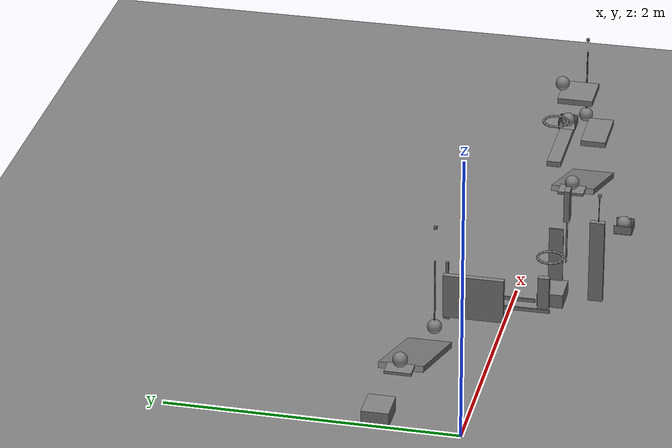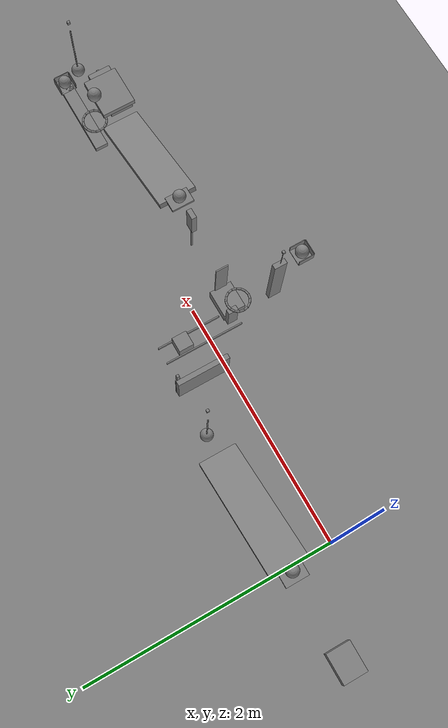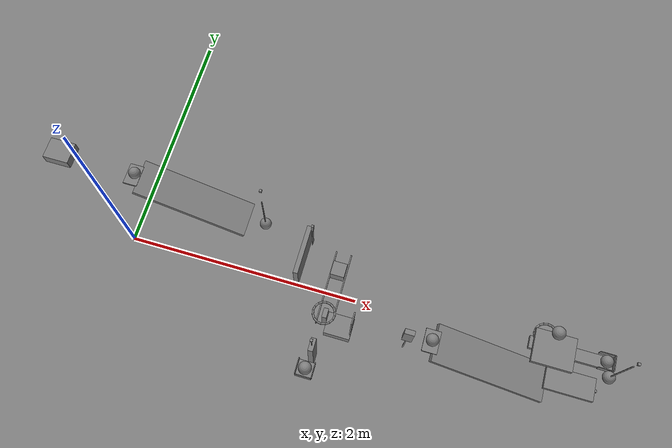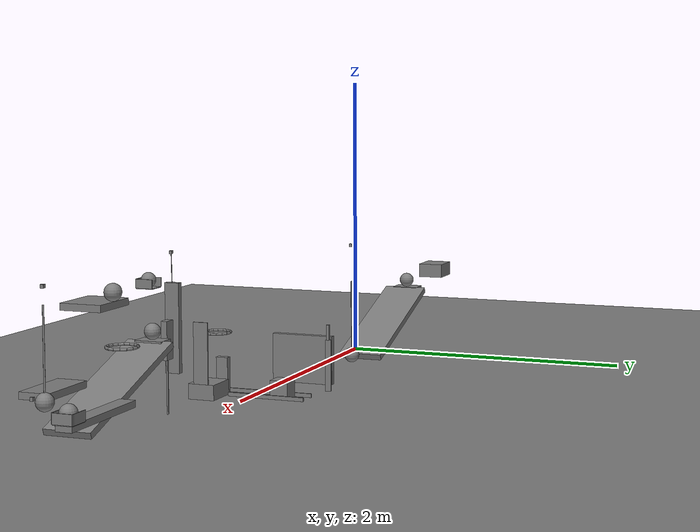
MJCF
<mujoco model="revised_chain_candidate">
  <compiler angle="radian"/>
  <option timestep="0.002"/>
  <worldbody>
    <geom name="floor" type="plane" size="10 10 0.1" friction="0.68 0.005 0.002"/>
    <body name="ramp1">
      <geom name="ramp1" type="box" pos="0.463006 0.4 0.302216" size="0.5 0.15 0.02" euler="0 0.349066 0" friction="0.68 0.005 0.0001" solref="0.01 1"/>
    </body>
    <body name="ball1 waiting pad">
      <geom name="ball1 waiting pad" type="box" pos="-0.05 0.4 0.48202" size="0.06 0.09 0.01" friction="0.68 0.005 0.0001" solref="0.01 1"/>
    </body>
    <body name="cart1" pos="-0.69 0.4 100.542">
      <joint name="cart1_guide" type="hinge" pos="0 0 0" axis="0 1 0" limited="true" range="-0.0174533 0" damping="2000"/>
      <geom name="cart1" type="box" pos="0 0 -100" size="0.11 0.09 0.05" mass="0.5" friction="0.68 0.005 0.0001" solref="0.01 1"/>
    </body>
    <body name="cart1 spring pusher" pos="-0.605 0.4 10.542">
      <joint name="cart1_spring_hinge" type="hinge" pos="0 0 0" axis="0 1 0" limited="true" range="-0.0349066 0.0349066" stiffness="1800" springref="0" damping="0.04"/>
      <geom name="cart1 spring pusher" type="box" pos="0 0 -10" size="0.005 0.07 0.04" mass="0.001" friction="0.68 0.005 0.0001" solref="0.01 1"/>
    </body>
    <body name="ball1" pos="-0.03 0.4 0.54202">
      <freejoint/>
      <geom name="ball1" type="sphere" pos="0 0 0" size="0.05" mass="0.2" condim="6" friction="0.68 0.005 0.002" solref="0.01 1"/>
    </body>
    <body name="pendulum1" pos="1.08969 0.4 0.67">
      <joint name="pendulum1_hinge" type="hinge" pos="0 0 0" axis="0 1 0" limited="true" range="-0.698132 0" damping="0.04"/>
      <geom name="pendulum1" type="sphere" pos="0 0 -0.5" size="0.05" mass="0.07" friction="0.68 0.005 0.0001" solref="0.01 1"/>
      <geom name="pendulum1 rod" type="capsule" size="0.005" fromto="0 0 0 0 0 -0.45" mass="0.001" friction="0.68 0.005 0.0001" solref="0.01 1"/>
      <geom name="pendulum1 counterweight" type="box" pos="0.01 0 0.25" size="0.01 0.01 0.01" mass="0.279" friction="0.68 0.005 0.0001" solref="0.01 1"/>
    </body>
    <body name="door1" pos="1.48109 0 0.2">
      <joint name="door1_hinge" type="hinge" pos="0 0 0" axis="0 0 1" limited="true" range="-1.22173 0" stiffness="9" springref="-1.22173" damping="0.04"/>
      <geom name="door1" type="box" pos="0 0.21 0" size="0.02 0.21 0.16" mass="0.45" friction="0.68 0.005 0.0001" solref="0.01 1"/>
    </body>
    <body name="door1 latch stand">
      <geom name="door1 latch stand" type="box" pos="1.51109 0.4 0.17" size="0.003 0.02 0.17" friction="0.68 0.005 0.0001" solref="0.01 1"/>
    </body>
    <body name="door1 latch" pos="1.51109 0.4 0.39">
      <freejoint/>
      <geom name="door1 latch" type="box" pos="0 0 0" size="0.01 0.01 0.05" mass="4.4" friction="0.68 0.005 0.0001" solref="0.01 1"/>
    </body>
    <body name="block1 near guide">
      <geom name="block1 near guide" type="box" pos="1.734 0.05 0.0125" size="0.005 0.325 0.0125" friction="0.68 0.005 0.0001" solref="0.01 1"/>
    </body>
    <body name="block1 far guide">
      <geom name="block1 far guide" type="box" pos="1.866 0.1125 0.0125" size="0.005 0.2625 0.0125" friction="0.68 0.005 0.0001" solref="0.01 1"/>
    </body>
    <body name="block1" pos="1.8 0.2 0.06">
      <freejoint/>
      <geom name="block1" type="box" pos="0 0 0" size="0.06 0.06 0.06" mass="0.35" friction="0.68 0.005 0.0001" solref="0.01 1"/>
    </body>
    <body name="domino1" pos="1.8 -0.22 0.12">
      <freejoint/>
      <geom name="domino1" type="box" pos="0 0 0" size="0.02 0.04 0.12" mass="0.25" friction="0.68 0.005 0.0001" solref="0.01 1"/>
    </body>
    <body name="lever1" pos="1.8 -0.58 0.41">
      <joint name="lever1_hinge" type="hinge" pos="0 0 0" axis="1 0 0" limited="true" range="-0.785398 0" damping="0.04"/>
      <geom name="lever1" type="box" pos="0 -1.11022e-16 5.55112e-17" size="0.3 0.05 0.02" euler="0 -1.5708 0" mass="0.095" friction="0.68 0.005 0.0001" solref="0.01 1"/>
      <geom name="lever1 counterweight" type="box" pos="0 -0.01 0.5" size="0.01 0.01 0.01" mass="0.4" friction="0.68 0.005 0.0001" solref="0.01 1"/>
      <geom name="lever1 counterweight rod" type="capsule" size="0.0025" fromto="0 0 0 0 -0.01 0.5" mass="0.001" friction="0.68 0.005 0.0001" solref="0.01 1"/>
      <geom name="lever1 launch pad" type="box" pos="0 -0.18 0.2575" size="0.06 0.06 0.0025" mass="0.001" friction="0.68 0.005 0.0001" solref="0.01 1"/>
      <geom name="lever1 cup back" type="box" pos="0 -0.2425 0.29" size="0.06 0.0025 0.03" mass="0.001" friction="0.68 0.005 0.0001" solref="0.01 1"/>
      <geom name="lever1 cup near wall" type="box" pos="-0.0625 -0.18 0.29" size="0.0025 0.06 0.03" mass="0.001" friction="0.68 0.005 0.0001" solref="0.01 1"/>
      <geom name="lever1 cup far wall" type="box" pos="0.0625 -0.18 0.29" size="0.0025 0.06 0.03" mass="0.001" friction="0.68 0.005 0.0001" solref="0.01 1"/>
    </body>
    <body name="ball2" pos="1.8 -0.76 0.72">
      <freejoint/>
      <geom name="ball2" type="sphere" pos="0 0 0" size="0.05" mass="0.2" condim="6" friction="0.68 0.005 0.002" solref="0.01 1"/>
    </body>
    <body name="ring1">
      <geom name="ring1_00" type="capsule" size="0.008" fromto="1.888 -0.26 0.4 1.8813 -0.226324 0.4" friction="0.68 0.005 0.0001" solref="0.01 1"/>
      <geom name="ring1_01" type="capsule" size="0.008" fromto="1.8813 -0.226324 0.4 1.86223 -0.197775 0.4" friction="0.68 0.005 0.0001" solref="0.01 1"/>
      <geom name="ring1_02" type="capsule" size="0.008" fromto="1.86223 -0.197775 0.4 1.83368 -0.178699 0.4" friction="0.68 0.005 0.0001" solref="0.01 1"/>
      <geom name="ring1_03" type="capsule" size="0.008" fromto="1.83368 -0.178699 0.4 1.8 -0.172 0.4" friction="0.68 0.005 0.0001" solref="0.01 1"/>
      <geom name="ring1_04" type="capsule" size="0.008" fromto="1.8 -0.172 0.4 1.76632 -0.178699 0.4" friction="0.68 0.005 0.0001" solref="0.01 1"/>
      <geom name="ring1_05" type="capsule" size="0.008" fromto="1.76632 -0.178699 0.4 1.73777 -0.197775 0.4" friction="0.68 0.005 0.0001" solref="0.01 1"/>
      <geom name="ring1_06" type="capsule" size="0.008" fromto="1.73777 -0.197775 0.4 1.7187 -0.226324 0.4" friction="0.68 0.005 0.0001" solref="0.01 1"/>
      <geom name="ring1_07" type="capsule" size="0.008" fromto="1.7187 -0.226324 0.4 1.712 -0.26 0.4" friction="0.68 0.005 0.0001" solref="0.01 1"/>
      <geom name="ring1_08" type="capsule" size="0.008" fromto="1.712 -0.26 0.4 1.7187 -0.293676 0.4" friction="0.68 0.005 0.0001" solref="0.01 1"/>
      <geom name="ring1_09" type="capsule" size="0.008" fromto="1.7187 -0.293676 0.4 1.73777 -0.322225 0.4" friction="0.68 0.005 0.0001" solref="0.01 1"/>
      <geom name="ring1_10" type="capsule" size="0.008" fromto="1.73777 -0.322225 0.4 1.76632 -0.341301 0.4" friction="0.68 0.005 0.0001" solref="0.01 1"/>
      <geom name="ring1_11" type="capsule" size="0.008" fromto="1.76632 -0.341301 0.4 1.8 -0.348 0.4" friction="0.68 0.005 0.0001" solref="0.01 1"/>
      <geom name="ring1_12" type="capsule" size="0.008" fromto="1.8 -0.348 0.4 1.83368 -0.341301 0.4" friction="0.68 0.005 0.0001" solref="0.01 1"/>
      <geom name="ring1_13" type="capsule" size="0.008" fromto="1.83368 -0.341301 0.4 1.86223 -0.322225 0.4" friction="0.68 0.005 0.0001" solref="0.01 1"/>
      <geom name="ring1_14" type="capsule" size="0.008" fromto="1.86223 -0.322225 0.4 1.8813 -0.293676 0.4" friction="0.68 0.005 0.0001" solref="0.01 1"/>
      <geom name="ring1_15" type="capsule" size="0.008" fromto="1.8813 -0.293676 0.4 1.888 -0.26 0.4" friction="0.68 0.005 0.0001" solref="0.01 1"/>
    </body>
    <body name="cart2" pos="1.931 -0.26 100.05">
      <joint name="cart2_guide" type="hinge" pos="0 0 0" axis="0 1 0" limited="true" range="-0.0174533 0" damping="2000"/>
      <geom name="cart2" type="box" pos="0 0 -100" size="0.11 0.09 0.05" mass="0.499" friction="0.68 0.005 0.0001" solref="0.01 1"/>
      <geom name="cart2 contact mast" type="box" pos="0.105 0 -99.75" size="0.005 0.05 0.2" mass="0.001" friction="0.68 0.005 0.0001" solref="0.01 1"/>
    </body>
    <body name="domino2 stand">
      <geom name="domino2 stand" type="box" pos="2.481 -0.26 0.17" size="0.005 0.005 0.17" friction="0.68 0.005 0.0001" solref="0.01 1"/>
    </body>
    <body name="domino2" pos="2.481 -0.26 0.46">
      <freejoint/>
      <geom name="domino2" type="box" pos="0 0 0" size="0.04 0.02 0.12" mass="0.25" friction="0.68 0.005 0.0001" solref="0.01 1"/>
    </body>
    <body name="ramp2">
      <geom name="ramp2" type="box" pos="3.15401 -0.26 0.302216" size="0.5 0.15 0.02" euler="0 0.349066 0" friction="0.68 0.005 0.0001" solref="0.01 1"/>
    </body>
    <body name="ball3 waiting pad">
      <geom name="ball3 waiting pad" type="box" pos="2.661 -0.26 0.48202" size="0.06 0.09 0.01" friction="0.68 0.005 0.0001" solref="0.01 1"/>
    </body>
    <body name="ball3" pos="2.661 -0.26 0.54202">
      <freejoint/>
      <geom name="ball3" type="sphere" pos="0 0 0" size="0.05" mass="0.2" condim="6" friction="0.68 0.005 0.002" solref="0.01 1"/>
    </body>
    <body name="flap1" pos="3.75069 -0.26 0.4">
      <joint name="flap1_hinge" type="hinge" pos="0 0 0" axis="0 1 0" limited="true" range="-2.61799 -1.5708" damping="0.04"/>
      <geom name="flap1" type="box" pos="0 0 0" size="0.19 0.09 0.02" mass="0.099" friction="0.68 0.005 0.0001" solref="0.01 1"/>
      <geom name="flap1 counterweight" type="box" pos="0.2 0 -0.01" size="0.01 0.01 0.01" mass="0.18" friction="0.68 0.005 0.0001" solref="0.01 1"/>
      <geom name="flap1 counterweight rod" type="capsule" size="0.0025" fromto="0 0 0 0.2 0 -0.01" mass="0.001" friction="0.68 0.005 0.0001" solref="0.01 1"/>
    </body>
    <body name="pendulum2" pos="4.0347 -0.13 0.9">
      <joint name="pendulum2_hinge" type="hinge" pos="0 0 0" axis="0 1 0" limited="true" range="0.907571 1.5708" damping="0.04"/>
      <geom name="pendulum2" type="sphere" pos="0 0 -0.5" size="0.05" mass="0.07" friction="0.68 0.005 0.0001" solref="0.01 1"/>
      <geom name="pendulum2 rod" type="capsule" size="0.005" fromto="0 0 0 0 0 -0.45" mass="0.001" friction="0.68 0.005 0.0001" solref="0.01 1"/>
      <geom name="pendulum2 counterweight" type="box" pos="0 0 0.1" size="0.01 0.01 0.01" mass="0.279" friction="0.68 0.005 0.0001" solref="0.01 1"/>
    </body>
    <body name="shelf1">
      <geom name="shelf1" type="box" pos="3.49111 -0.155 0.83" size="0.15 0.125 0.02" friction="0.68 0.005 0.0001" solref="0.01 1"/>
    </body>
    <body name="ball4" pos="3.49111 -0.04 0.9">
      <freejoint/>
      <geom name="ball4" type="sphere" pos="0 0 0" size="0.05" mass="0.2" condim="6" friction="0.68 0.005 0.002" solref="0.01 1"/>
    </body>
    <body name="ring2">
      <geom name="ring2_00" type="capsule" size="0.008" fromto="3.55911 0 0.6 3.55241 0.0336761 0.6" friction="0.68 0.005 0.0001" solref="0.01 1"/>
      <geom name="ring2_01" type="capsule" size="0.008" fromto="3.55241 0.0336761 0.6 3.53333 0.0622254 0.6" friction="0.68 0.005 0.0001" solref="0.01 1"/>
      <geom name="ring2_02" type="capsule" size="0.008" fromto="3.53333 0.0622254 0.6 3.50478 0.0813014 0.6" friction="0.68 0.005 0.0001" solref="0.01 1"/>
      <geom name="ring2_03" type="capsule" size="0.008" fromto="3.50478 0.0813014 0.6 3.47111 0.088 0.6" friction="0.68 0.005 0.0001" solref="0.01 1"/>
      <geom name="ring2_04" type="capsule" size="0.008" fromto="3.47111 0.088 0.6 3.43743 0.0813014 0.6" friction="0.68 0.005 0.0001" solref="0.01 1"/>
      <geom name="ring2_05" type="capsule" size="0.008" fromto="3.43743 0.0813014 0.6 3.40888 0.0622254 0.6" friction="0.68 0.005 0.0001" solref="0.01 1"/>
      <geom name="ring2_06" type="capsule" size="0.008" fromto="3.40888 0.0622254 0.6 3.38981 0.0336761 0.6" friction="0.68 0.005 0.0001" solref="0.01 1"/>
      <geom name="ring2_07" type="capsule" size="0.008" fromto="3.38981 0.0336761 0.6 3.38311 1.07769e-17 0.6" friction="0.68 0.005 0.0001" solref="0.01 1"/>
      <geom name="ring2_08" type="capsule" size="0.008" fromto="3.38311 1.07769e-17 0.6 3.38981 -0.0336761 0.6" friction="0.68 0.005 0.0001" solref="0.01 1"/>
      <geom name="ring2_09" type="capsule" size="0.008" fromto="3.38981 -0.0336761 0.6 3.40888 -0.0622254 0.6" friction="0.68 0.005 0.0001" solref="0.01 1"/>
      <geom name="ring2_10" type="capsule" size="0.008" fromto="3.40888 -0.0622254 0.6 3.43743 -0.0813014 0.6" friction="0.68 0.005 0.0001" solref="0.01 1"/>
      <geom name="ring2_11" type="capsule" size="0.008" fromto="3.43743 -0.0813014 0.6 3.47111 -0.088 0.6" friction="0.68 0.005 0.0001" solref="0.01 1"/>
      <geom name="ring2_12" type="capsule" size="0.008" fromto="3.47111 -0.088 0.6 3.50478 -0.0813014 0.6" friction="0.68 0.005 0.0001" solref="0.01 1"/>
      <geom name="ring2_13" type="capsule" size="0.008" fromto="3.50478 -0.0813014 0.6 3.53333 -0.0622254 0.6" friction="0.68 0.005 0.0001" solref="0.01 1"/>
      <geom name="ring2_14" type="capsule" size="0.008" fromto="3.53333 -0.0622254 0.6 3.55241 -0.0336761 0.6" friction="0.68 0.005 0.0001" solref="0.01 1"/>
      <geom name="ring2_15" type="capsule" size="0.008" fromto="3.55241 -0.0336761 0.6 3.55911 -2.15538e-17 0.6" friction="0.68 0.005 0.0001" solref="0.01 1"/>
    </body>
    <body name="seesaw1" pos="3.74611 0 0.28">
      <joint name="seesaw1_hinge" type="hinge" pos="0 0 0" axis="0 1 0" limited="true" range="-0.733038 0" damping="0.04"/>
      <geom name="seesaw1" type="box" pos="0 0 0" size="0.325 0.05 0.02" mass="0.546" friction="0.68 0.005 0.0001" solref="0.01 1"/>
      <geom name="seesaw1 launch pad" type="box" pos="0.275 0 0.0175" size="0.06 0.06 0.0025" mass="0.001" friction="0.68 0.005 0.0001" solref="0.01 1"/>
      <geom name="seesaw1 cup back" type="box" pos="0.3375 0 0.05" size="0.0025 0.06 0.03" mass="0.001" friction="0.68 0.005 0.0001" solref="0.01 1"/>
      <geom name="seesaw1 cup left wall" type="box" pos="0.275 0.0625 0.05" size="0.06 0.0025 0.03" mass="0.001" friction="0.68 0.005 0.0001" solref="0.01 1"/>
      <geom name="seesaw1 cup right wall" type="box" pos="0.275 -0.0625 0.05" size="0.06 0.0025 0.03" mass="0.001" friction="0.68 0.005 0.0001" solref="0.01 1"/>
    </body>
    <body name="ball5" pos="4.02111 0 0.35">
      <freejoint/>
      <geom name="ball5" type="sphere" pos="0 0 0" size="0.05" mass="0.2" condim="6" friction="0.68 0.005 0.002" solref="0.01 1"/>
    </body>
  </worldbody>
  <keyframe>
    <key name="start" qpos="0 0.0200013 -0.03 0.4 0.54202 1 0 0 0 0 0 1.51109 0.4 0.39 1 0 0 0 1.8 0.2 0.06 1 0 0 0 1.8 -0.22 0.12 1 0 0 0 0 1.8 -0.76 0.72 1 0 0 0 0 2.481 -0.26 0.46 1 0 0 0 2.661 -0.26 0.54202 1 0 0 0 -1.5708 0.907571 3.49111 -0.04 0.9 1 0 0 0 0 4.02111 0 0.35 1 0 0 0" qvel="0 0 0 0 0 0 0 0 0 0 0 0 0 0 0 0 0 0 0 0 0 0 0 0 0 0 0 0 0 0 0 0 0 0 0 0 0 0 0 0 0 0 0 0 0 0 0 0 0 0 0 0 0 0 0 0 0 0 0 0 0 0 0"/>
  </keyframe>
</mujoco>
